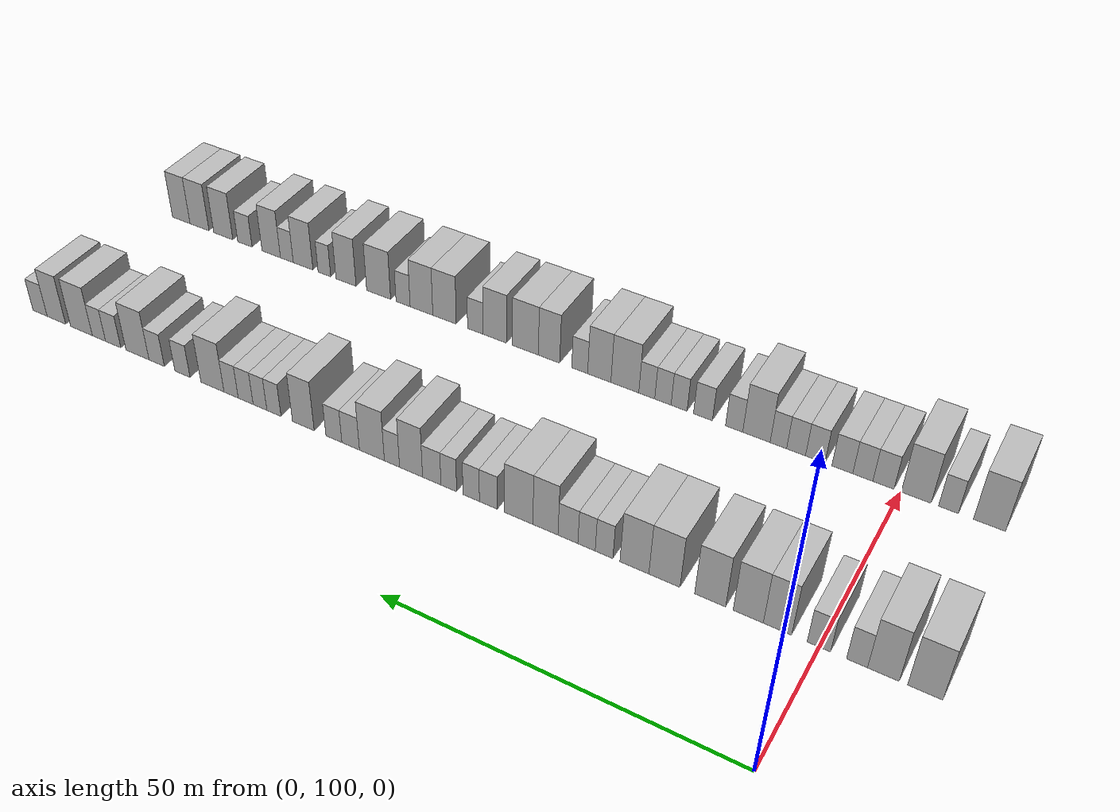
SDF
<sdf version="1.6">
 <world name="default">
  <model name="building_124">
   <static>1</static>
   <pose>25.0000 86.9409 0 0.000000 0.000000 0.000000</pose>
   <link name="link">
    <pose>0 0 4.50 0 0 0</pose>
    <collision name="collision"><geometry><box><size>10.0000 4.2469 9.0000</size></box></geometry></collision>
    <visual name="visual">
     <cast_shadows>0</cast_shadows>
     <geometry><box><size>10.0000 4.2469 9.0000</size></box></geometry>
     <material>
      <script>
       <uri>model://HANNAS_wall/materials/scripts</uri>
       <uri>model://HANNAS_wall/materials/textures</uri>
       <name>vrc/HANNAS_wall</name>
      </script>
     </material>
    </visual>
   </link>
  </model>
  <model name="building_125">
   <static>1</static>
   <pose>25.0000 92.0173 0 0.000000 0.000000 0.000000</pose>
   <link name="link">
    <pose>0 0 4.50 0 0 0</pose>
    <collision name="collision"><geometry><box><size>10.0000 3.9060 9.0000</size></box></geometry></collision>
    <visual name="visual">
     <cast_shadows>0</cast_shadows>
     <geometry><box><size>10.0000 3.9060 9.0000</size></box></geometry>
     <material>
      <script>
       <uri>model://HANNAS_wall/materials/scripts</uri>
       <uri>model://HANNAS_wall/materials/textures</uri>
       <name>vrc/HANNAS_wall</name>
      </script>
     </material>
    </visual>
   </link>
  </model>
  <model name="building_126">
   <static>1</static>
   <pose>25.0000 95.2764 0 0.000000 0.000000 0.000000</pose>
   <link name="link">
    <pose>0 0 3.00 0 0 0</pose>
    <collision name="collision"><geometry><box><size>10.0000 2.6122 6.0000</size></box></geometry></collision>
    <visual name="visual">
     <cast_shadows>0</cast_shadows>
     <geometry><box><size>10.0000 2.6122 6.0000</size></box></geometry>
     <material>
      <script>
       <uri>model://HANNAS_wall/materials/scripts</uri>
       <uri>model://HANNAS_wall/materials/textures</uri>
       <name>vrc/HANNAS_wall</name>
      </script>
     </material>
    </visual>
   </link>
  </model>
  <model name="building_127">
   <static>1</static>
   <pose>25.0000 100.0725 0 0.000000 0.000000 0.000000</pose>
   <link name="link">
    <pose>0 0 3.00 0 0 0</pose>
    <collision name="collision"><geometry><box><size>10.0000 2.9800 6.0000</size></box></geometry></collision>
    <visual name="visual">
     <cast_shadows>0</cast_shadows>
     <geometry><box><size>10.0000 2.9800 6.0000</size></box></geometry>
     <material>
      <script>
       <uri>model://HANNAS_wall/materials/scripts</uri>
       <uri>model://HANNAS_wall/materials/textures</uri>
       <name>vrc/HANNAS_wall</name>
      </script>
     </material>
    </visual>
   </link>
  </model>
  <model name="building_128">
   <static>1</static>
   <pose>25.0000 105.4045 0 0.000000 0.000000 0.000000</pose>
   <link name="link">
    <pose>0 0 4.50 0 0 0</pose>
    <collision name="collision"><geometry><box><size>10.0000 3.6839 9.0000</size></box></geometry></collision>
    <visual name="visual">
     <cast_shadows>0</cast_shadows>
     <geometry><box><size>10.0000 3.6839 9.0000</size></box></geometry>
     <material>
      <script>
       <uri>model://HANNAS_wall/materials/scripts</uri>
       <uri>model://HANNAS_wall/materials/textures</uri>
       <name>vrc/HANNAS_wall</name>
      </script>
     </material>
    </visual>
   </link>
  </model>
  <model name="building_129">
   <static>1</static>
   <pose>25.0000 109.2406 0 0.000000 0.000000 0.000000</pose>
   <link name="link">
    <pose>0 0 4.50 0 0 0</pose>
    <collision name="collision"><geometry><box><size>10.0000 3.9883 9.0000</size></box></geometry></collision>
    <visual name="visual">
     <cast_shadows>0</cast_shadows>
     <geometry><box><size>10.0000 3.9883 9.0000</size></box></geometry>
     <material>
      <script>
       <uri>model://HANNAS_wall/materials/scripts</uri>
       <uri>model://HANNAS_wall/materials/textures</uri>
       <name>vrc/HANNAS_wall</name>
      </script>
     </material>
    </visual>
   </link>
  </model>
  <model name="building_130">
   <static>1</static>
   <pose>25.0000 114.3292 0 0.000000 0.000000 0.000000</pose>
   <link name="link">
    <pose>0 0 4.50 0 0 0</pose>
    <collision name="collision"><geometry><box><size>10.0000 4.1889 9.0000</size></box></geometry></collision>
    <visual name="visual">
     <cast_shadows>0</cast_shadows>
     <geometry><box><size>10.0000 4.1889 9.0000</size></box></geometry>
     <material>
      <script>
       <uri>model://HANNAS_wall/materials/scripts</uri>
       <uri>model://HANNAS_wall/materials/textures</uri>
       <name>vrc/HANNAS_wall</name>
      </script>
     </material>
    </visual>
   </link>
  </model>
  <model name="building_131">
   <static>1</static>
   <pose>25.0000 120.5879 0 0.000000 0.000000 0.000000</pose>
   <link name="link">
    <pose>0 0 4.50 0 0 0</pose>
    <collision name="collision"><geometry><box><size>10.0000 4.3285 9.0000</size></box></geometry></collision>
    <visual name="visual">
     <cast_shadows>0</cast_shadows>
     <geometry><box><size>10.0000 4.3285 9.0000</size></box></geometry>
     <material>
      <script>
       <uri>model://HANNAS_wall/materials/scripts</uri>
       <uri>model://HANNAS_wall/materials/textures</uri>
       <name>vrc/HANNAS_wall</name>
      </script>
     </material>
    </visual>
   </link>
  </model>
  <model name="building_132">
   <static>1</static>
   <pose>25.0000 124.7905 0 0.000000 0.000000 0.000000</pose>
   <link name="link">
    <pose>0 0 4.50 0 0 0</pose>
    <collision name="collision"><geometry><box><size>10.0000 4.0767 9.0000</size></box></geometry></collision>
    <visual name="visual">
     <cast_shadows>0</cast_shadows>
     <geometry><box><size>10.0000 4.0767 9.0000</size></box></geometry>
     <material>
      <script>
       <uri>model://HANNAS_wall/materials/scripts</uri>
       <uri>model://HANNAS_wall/materials/textures</uri>
       <name>vrc/HANNAS_wall</name>
      </script>
     </material>
    </visual>
   </link>
  </model>
  <model name="building_133">
   <static>1</static>
   <pose>25.0000 129.1010 0 0.000000 0.000000 0.000000</pose>
   <link name="link">
    <pose>0 0 3.00 0 0 0</pose>
    <collision name="collision"><geometry><box><size>10.0000 2.5442 6.0000</size></box></geometry></collision>
    <visual name="visual">
     <cast_shadows>0</cast_shadows>
     <geometry><box><size>10.0000 2.5442 6.0000</size></box></geometry>
     <material>
      <script>
       <uri>model://HANNAS_wall/materials/scripts</uri>
       <uri>model://HANNAS_wall/materials/textures</uri>
       <name>vrc/HANNAS_wall</name>
      </script>
     </material>
    </visual>
   </link>
  </model>
  <model name="building_134">
   <static>1</static>
   <pose>25.0000 131.6292 0 0.000000 0.000000 0.000000</pose>
   <link name="link">
    <pose>0 0 3.00 0 0 0</pose>
    <collision name="collision"><geometry><box><size>10.0000 2.5123 6.0000</size></box></geometry></collision>
    <visual name="visual">
     <cast_shadows>0</cast_shadows>
     <geometry><box><size>10.0000 2.5123 6.0000</size></box></geometry>
     <material>
      <script>
       <uri>model://HANNAS_wall/materials/scripts</uri>
       <uri>model://HANNAS_wall/materials/textures</uri>
       <name>vrc/HANNAS_wall</name>
      </script>
     </material>
    </visual>
   </link>
  </model>
  <model name="building_135">
   <static>1</static>
   <pose>25.0000 134.3430 0 0.000000 0.000000 0.000000</pose>
   <link name="link">
    <pose>0 0 3.00 0 0 0</pose>
    <collision name="collision"><geometry><box><size>10.0000 2.9154 6.0000</size></box></geometry></collision>
    <visual name="visual">
     <cast_shadows>0</cast_shadows>
     <geometry><box><size>10.0000 2.9154 6.0000</size></box></geometry>
     <material>
      <script>
       <uri>model://HANNAS_wall/materials/scripts</uri>
       <uri>model://HANNAS_wall/materials/textures</uri>
       <name>vrc/HANNAS_wall</name>
      </script>
     </material>
    </visual>
   </link>
  </model>
  <model name="building_136">
   <static>1</static>
   <pose>25.0000 137.6763 0 0.000000 0.000000 0.000000</pose>
   <link name="link">
    <pose>0 0 4.50 0 0 0</pose>
    <collision name="collision"><geometry><box><size>10.0000 3.7512 9.0000</size></box></geometry></collision>
    <visual name="visual">
     <cast_shadows>0</cast_shadows>
     <geometry><box><size>10.0000 3.7512 9.0000</size></box></geometry>
     <material>
      <script>
       <uri>model://HANNAS_wall/materials/scripts</uri>
       <uri>model://HANNAS_wall/materials/textures</uri>
       <name>vrc/HANNAS_wall</name>
      </script>
     </material>
    </visual>
   </link>
  </model>
  <model name="building_137">
   <static>1</static>
   <pose>25.0000 141.7162 0 0.000000 0.000000 0.000000</pose>
   <link name="link">
    <pose>0 0 4.50 0 0 0</pose>
    <collision name="collision"><geometry><box><size>10.0000 4.3286 9.0000</size></box></geometry></collision>
    <visual name="visual">
     <cast_shadows>0</cast_shadows>
     <geometry><box><size>10.0000 4.3286 9.0000</size></box></geometry>
     <material>
      <script>
       <uri>model://HANNAS_wall/materials/scripts</uri>
       <uri>model://HANNAS_wall/materials/textures</uri>
       <name>vrc/HANNAS_wall</name>
      </script>
     </material>
    </visual>
   </link>
  </model>
  <model name="building_138">
   <static>1</static>
   <pose>25.0000 146.2720 0 0.000000 0.000000 0.000000</pose>
   <link name="link">
    <pose>0 0 3.00 0 0 0</pose>
    <collision name="collision"><geometry><box><size>10.0000 2.7831 6.0000</size></box></geometry></collision>
    <visual name="visual">
     <cast_shadows>0</cast_shadows>
     <geometry><box><size>10.0000 2.7831 6.0000</size></box></geometry>
     <material>
      <script>
       <uri>model://HANNAS_wall/materials/scripts</uri>
       <uri>model://HANNAS_wall/materials/textures</uri>
       <name>vrc/HANNAS_wall</name>
      </script>
     </material>
    </visual>
   </link>
  </model>
  <model name="building_139">
   <static>1</static>
   <pose>25.0000 148.9371 0 0.000000 0.000000 0.000000</pose>
   <link name="link">
    <pose>0 0 3.00 0 0 0</pose>
    <collision name="collision"><geometry><box><size>10.0000 2.5471 6.0000</size></box></geometry></collision>
    <visual name="visual">
     <cast_shadows>0</cast_shadows>
     <geometry><box><size>10.0000 2.5471 6.0000</size></box></geometry>
     <material>
      <script>
       <uri>model://HANNAS_wall/materials/scripts</uri>
       <uri>model://HANNAS_wall/materials/textures</uri>
       <name>vrc/HANNAS_wall</name>
      </script>
     </material>
    </visual>
   </link>
  </model>
  <model name="building_140">
   <static>1</static>
   <pose>25.0000 152.4462 0 0.000000 0.000000 0.000000</pose>
   <link name="link">
    <pose>0 0 3.00 0 0 0</pose>
    <collision name="collision"><geometry><box><size>10.0000 2.4710 6.0000</size></box></geometry></collision>
    <visual name="visual">
     <cast_shadows>0</cast_shadows>
     <geometry><box><size>10.0000 2.4710 6.0000</size></box></geometry>
     <material>
      <script>
       <uri>model://HANNAS_wall/materials/scripts</uri>
       <uri>model://HANNAS_wall/materials/textures</uri>
       <name>vrc/HANNAS_wall</name>
      </script>
     </material>
    </visual>
   </link>
  </model>
  <model name="building_141">
   <static>1</static>
   <pose>25.0000 155.1417 0 0.000000 0.000000 0.000000</pose>
   <link name="link">
    <pose>0 0 3.00 0 0 0</pose>
    <collision name="collision"><geometry><box><size>10.0000 2.9201 6.0000</size></box></geometry></collision>
    <visual name="visual">
     <cast_shadows>0</cast_shadows>
     <geometry><box><size>10.0000 2.9201 6.0000</size></box></geometry>
     <material>
      <script>
       <uri>model://HANNAS_wall/materials/scripts</uri>
       <uri>model://HANNAS_wall/materials/textures</uri>
       <name>vrc/HANNAS_wall</name>
      </script>
     </material>
    </visual>
   </link>
  </model>
  <model name="building_142">
   <static>1</static>
   <pose>25.0000 158.4589 0 0.000000 0.000000 0.000000</pose>
   <link name="link">
    <pose>0 0 4.50 0 0 0</pose>
    <collision name="collision"><geometry><box><size>10.0000 3.7144 9.0000</size></box></geometry></collision>
    <visual name="visual">
     <cast_shadows>0</cast_shadows>
     <geometry><box><size>10.0000 3.7144 9.0000</size></box></geometry>
     <material>
      <script>
       <uri>model://HANNAS_wall/materials/scripts</uri>
       <uri>model://HANNAS_wall/materials/textures</uri>
       <name>vrc/HANNAS_wall</name>
      </script>
     </material>
    </visual>
   </link>
  </model>
  <model name="building_143">
   <static>1</static>
   <pose>25.0000 161.5515 0 0.000000 0.000000 0.000000</pose>
   <link name="link">
    <pose>0 0 3.00 0 0 0</pose>
    <collision name="collision"><geometry><box><size>10.0000 2.4708 6.0000</size></box></geometry></collision>
    <visual name="visual">
     <cast_shadows>0</cast_shadows>
     <geometry><box><size>10.0000 2.4708 6.0000</size></box></geometry>
     <material>
      <script>
       <uri>model://HANNAS_wall/materials/scripts</uri>
       <uri>model://HANNAS_wall/materials/textures</uri>
       <name>vrc/HANNAS_wall</name>
      </script>
     </material>
    </visual>
   </link>
  </model>
  <model name="building_144">
   <static>1</static>
   <pose>25.0000 164.8458 0 0.000000 0.000000 0.000000</pose>
   <link name="link">
    <pose>0 0 4.50 0 0 0</pose>
    <collision name="collision"><geometry><box><size>10.0000 4.1177 9.0000</size></box></geometry></collision>
    <visual name="visual">
     <cast_shadows>0</cast_shadows>
     <geometry><box><size>10.0000 4.1177 9.0000</size></box></geometry>
     <material>
      <script>
       <uri>model://HANNAS_wall/materials/scripts</uri>
       <uri>model://HANNAS_wall/materials/textures</uri>
       <name>vrc/HANNAS_wall</name>
      </script>
     </material>
    </visual>
   </link>
  </model>
  <model name="building_145">
   <static>1</static>
   <pose>25.0000 168.3712 0 0.000000 0.000000 0.000000</pose>
   <link name="link">
    <pose>0 0 3.00 0 0 0</pose>
    <collision name="collision"><geometry><box><size>10.0000 2.9330 6.0000</size></box></geometry></collision>
    <visual name="visual">
     <cast_shadows>0</cast_shadows>
     <geometry><box><size>10.0000 2.9330 6.0000</size></box></geometry>
     <material>
      <script>
       <uri>model://HANNAS_wall/materials/scripts</uri>
       <uri>model://HANNAS_wall/materials/textures</uri>
       <name>vrc/HANNAS_wall</name>
      </script>
     </material>
    </visual>
   </link>
  </model>
  <model name="building_146">
   <static>1</static>
   <pose>25.0000 171.1891 0 0.000000 0.000000 0.000000</pose>
   <link name="link">
    <pose>0 0 3.00 0 0 0</pose>
    <collision name="collision"><geometry><box><size>10.0000 2.7029 6.0000</size></box></geometry></collision>
    <visual name="visual">
     <cast_shadows>0</cast_shadows>
     <geometry><box><size>10.0000 2.7029 6.0000</size></box></geometry>
     <material>
      <script>
       <uri>model://HANNAS_wall/materials/scripts</uri>
       <uri>model://HANNAS_wall/materials/textures</uri>
       <name>vrc/HANNAS_wall</name>
      </script>
     </material>
    </visual>
   </link>
  </model>
  <model name="building_147">
   <static>1</static>
   <pose>25.0000 176.4141 0 0.000000 0.000000 0.000000</pose>
   <link name="link">
    <pose>0 0 4.50 0 0 0</pose>
    <collision name="collision"><geometry><box><size>10.0000 3.7472 9.0000</size></box></geometry></collision>
    <visual name="visual">
     <cast_shadows>0</cast_shadows>
     <geometry><box><size>10.0000 3.7472 9.0000</size></box></geometry>
     <material>
      <script>
       <uri>model://HANNAS_wall/materials/scripts</uri>
       <uri>model://HANNAS_wall/materials/textures</uri>
       <name>vrc/HANNAS_wall</name>
      </script>
     </material>
    </visual>
   </link>
  </model>
  <model name="building_148">
   <static>1</static>
   <pose>25.0000 181.5297 0 0.000000 0.000000 0.000000</pose>
   <link name="link">
    <pose>0 0 3.00 0 0 0</pose>
    <collision name="collision"><geometry><box><size>10.0000 2.4840 6.0000</size></box></geometry></collision>
    <visual name="visual">
     <cast_shadows>0</cast_shadows>
     <geometry><box><size>10.0000 2.4840 6.0000</size></box></geometry>
     <material>
      <script>
       <uri>model://HANNAS_wall/materials/scripts</uri>
       <uri>model://HANNAS_wall/materials/textures</uri>
       <name>vrc/HANNAS_wall</name>
      </script>
     </material>
    </visual>
   </link>
  </model>
  <model name="building_149">
   <static>1</static>
   <pose>25.0000 183.9895 0 0.000000 0.000000 0.000000</pose>
   <link name="link">
    <pose>0 0 3.00 0 0 0</pose>
    <collision name="collision"><geometry><box><size>10.0000 2.4355 6.0000</size></box></geometry></collision>
    <visual name="visual">
     <cast_shadows>0</cast_shadows>
     <geometry><box><size>10.0000 2.4355 6.0000</size></box></geometry>
     <material>
      <script>
       <uri>model://HANNAS_wall/materials/scripts</uri>
       <uri>model://HANNAS_wall/materials/textures</uri>
       <name>vrc/HANNAS_wall</name>
      </script>
     </material>
    </visual>
   </link>
  </model>
  <model name="building_150">
   <static>1</static>
   <pose>25.0000 186.5406 0 0.000000 0.000000 0.000000</pose>
   <link name="link">
    <pose>0 0 3.00 0 0 0</pose>
    <collision name="collision"><geometry><box><size>10.0000 2.6667 6.0000</size></box></geometry></collision>
    <visual name="visual">
     <cast_shadows>0</cast_shadows>
     <geometry><box><size>10.0000 2.6667 6.0000</size></box></geometry>
     <material>
      <script>
       <uri>model://HANNAS_wall/materials/scripts</uri>
       <uri>model://HANNAS_wall/materials/textures</uri>
       <name>vrc/HANNAS_wall</name>
      </script>
     </material>
    </visual>
   </link>
  </model>
  <model name="building_151">
   <static>1</static>
   <pose>25.0000 189.1612 0 0.000000 0.000000 0.000000</pose>
   <link name="link">
    <pose>0 0 3.00 0 0 0</pose>
    <collision name="collision"><geometry><box><size>10.0000 2.5745 6.0000</size></box></geometry></collision>
    <visual name="visual">
     <cast_shadows>0</cast_shadows>
     <geometry><box><size>10.0000 2.5745 6.0000</size></box></geometry>
     <material>
      <script>
       <uri>model://HANNAS_wall/materials/scripts</uri>
       <uri>model://HANNAS_wall/materials/textures</uri>
       <name>vrc/HANNAS_wall</name>
      </script>
     </material>
    </visual>
   </link>
  </model>
  <model name="building_152">
   <static>1</static>
   <pose>25.0000 192.5682 0 0.000000 0.000000 0.000000</pose>
   <link name="link">
    <pose>0 0 4.50 0 0 0</pose>
    <collision name="collision"><geometry><box><size>10.0000 4.2395 9.0000</size></box></geometry></collision>
    <visual name="visual">
     <cast_shadows>0</cast_shadows>
     <geometry><box><size>10.0000 4.2395 9.0000</size></box></geometry>
     <material>
      <script>
       <uri>model://HANNAS_wall/materials/scripts</uri>
       <uri>model://HANNAS_wall/materials/textures</uri>
       <name>vrc/HANNAS_wall</name>
      </script>
     </material>
    </visual>
   </link>
  </model>
  <model name="building_153">
   <static>1</static>
   <pose>25.0000 198.0959 0 0.000000 0.000000 0.000000</pose>
   <link name="link">
    <pose>0 0 3.00 0 0 0</pose>
    <collision name="collision"><geometry><box><size>10.0000 2.8158 6.0000</size></box></geometry></collision>
    <visual name="visual">
     <cast_shadows>0</cast_shadows>
     <geometry><box><size>10.0000 2.8158 6.0000</size></box></geometry>
     <material>
      <script>
       <uri>model://HANNAS_wall/materials/scripts</uri>
       <uri>model://HANNAS_wall/materials/textures</uri>
       <name>vrc/HANNAS_wall</name>
      </script>
     </material>
    </visual>
   </link>
  </model>
  <model name="building_154">
   <static>1</static>
   <pose>25.0000 202.9562 0 0.000000 0.000000 0.000000</pose>
   <link name="link">
    <pose>0 0 3.00 0 0 0</pose>
    <collision name="collision"><geometry><box><size>10.0000 2.9048 6.0000</size></box></geometry></collision>
    <visual name="visual">
     <cast_shadows>0</cast_shadows>
     <geometry><box><size>10.0000 2.9048 6.0000</size></box></geometry>
     <material>
      <script>
       <uri>model://HANNAS_wall/materials/scripts</uri>
       <uri>model://HANNAS_wall/materials/textures</uri>
       <name>vrc/HANNAS_wall</name>
      </script>
     </material>
    </visual>
   </link>
  </model>
  <model name="building_155">
   <static>1</static>
   <pose>25.0000 206.6301 0 0.000000 0.000000 0.000000</pose>
   <link name="link">
    <pose>0 0 4.50 0 0 0</pose>
    <collision name="collision"><geometry><box><size>10.0000 4.4431 9.0000</size></box></geometry></collision>
    <visual name="visual">
     <cast_shadows>0</cast_shadows>
     <geometry><box><size>10.0000 4.4431 9.0000</size></box></geometry>
     <material>
      <script>
       <uri>model://HANNAS_wall/materials/scripts</uri>
       <uri>model://HANNAS_wall/materials/textures</uri>
       <name>vrc/HANNAS_wall</name>
      </script>
     </material>
    </visual>
   </link>
  </model>
  <model name="building_156">
   <static>1</static>
   <pose>25.0000 211.3444 0 0.000000 0.000000 0.000000</pose>
   <link name="link">
    <pose>0 0 3.00 0 0 0</pose>
    <collision name="collision"><geometry><box><size>10.0000 2.9855 6.0000</size></box></geometry></collision>
    <visual name="visual">
     <cast_shadows>0</cast_shadows>
     <geometry><box><size>10.0000 2.9855 6.0000</size></box></geometry>
     <material>
      <script>
       <uri>model://HANNAS_wall/materials/scripts</uri>
       <uri>model://HANNAS_wall/materials/textures</uri>
       <name>vrc/HANNAS_wall</name>
      </script>
     </material>
    </visual>
   </link>
  </model>
  <model name="building_157">
   <static>1</static>
   <pose>25.0000 214.1447 0 0.000000 0.000000 0.000000</pose>
   <link name="link">
    <pose>0 0 3.00 0 0 0</pose>
    <collision name="collision"><geometry><box><size>10.0000 2.6151 6.0000</size></box></geometry></collision>
    <visual name="visual">
     <cast_shadows>0</cast_shadows>
     <geometry><box><size>10.0000 2.6151 6.0000</size></box></geometry>
     <material>
      <script>
       <uri>model://HANNAS_wall/materials/scripts</uri>
       <uri>model://HANNAS_wall/materials/textures</uri>
       <name>vrc/HANNAS_wall</name>
      </script>
     </material>
    </visual>
   </link>
  </model>
  <model name="building_158">
   <static>1</static>
   <pose>25.0000 217.6254 0 0.000000 0.000000 0.000000</pose>
   <link name="link">
    <pose>0 0 4.50 0 0 0</pose>
    <collision name="collision"><geometry><box><size>10.0000 4.3462 9.0000</size></box></geometry></collision>
    <visual name="visual">
     <cast_shadows>0</cast_shadows>
     <geometry><box><size>10.0000 4.3462 9.0000</size></box></geometry>
     <material>
      <script>
       <uri>model://HANNAS_wall/materials/scripts</uri>
       <uri>model://HANNAS_wall/materials/textures</uri>
       <name>vrc/HANNAS_wall</name>
      </script>
     </material>
    </visual>
   </link>
  </model>
  <model name="building_159">
   <static>1</static>
   <pose>25.0000 222.6767 0 0.000000 0.000000 0.000000</pose>
   <link name="link">
    <pose>0 0 4.50 0 0 0</pose>
    <collision name="collision"><geometry><box><size>10.0000 3.7565 9.0000</size></box></geometry></collision>
    <visual name="visual">
     <cast_shadows>0</cast_shadows>
     <geometry><box><size>10.0000 3.7565 9.0000</size></box></geometry>
     <material>
      <script>
       <uri>model://HANNAS_wall/materials/scripts</uri>
       <uri>model://HANNAS_wall/materials/textures</uri>
       <name>vrc/HANNAS_wall</name>
      </script>
     </material>
    </visual>
   </link>
  </model>
  <model name="building_160">
   <static>1</static>
   <pose>25.0000 226.0055 0 0.000000 0.000000 0.000000</pose>
   <link name="link">
    <pose>0 0 3.00 0 0 0</pose>
    <collision name="collision"><geometry><box><size>10.0000 2.9012 6.0000</size></box></geometry></collision>
    <visual name="visual">
     <cast_shadows>0</cast_shadows>
     <geometry><box><size>10.0000 2.9012 6.0000</size></box></geometry>
     <material>
      <script>
       <uri>model://HANNAS_wall/materials/scripts</uri>
       <uri>model://HANNAS_wall/materials/textures</uri>
       <name>vrc/HANNAS_wall</name>
      </script>
     </material>
    </visual>
   </link>
  </model>
  <model name="building_359">
   <static>1</static>
   <pose>55.0000 88.0770 0 0.000000 0.000000 0.000000</pose>
   <link name="link">
    <pose>0 0 4.50 0 0 0</pose>
    <collision name="collision"><geometry><box><size>10.0000 4.2356 9.0000</size></box></geometry></collision>
    <visual name="visual">
     <cast_shadows>0</cast_shadows>
     <geometry><box><size>10.0000 4.2356 9.0000</size></box></geometry>
     <material>
      <script>
       <uri>model://HANNAS_wall/materials/scripts</uri>
       <uri>model://HANNAS_wall/materials/textures</uri>
       <name>vrc/HANNAS_wall</name>
      </script>
     </material>
    </visual>
   </link>
  </model>
  <model name="building_360">
   <static>1</static>
   <pose>55.0000 93.5333 0 0.000000 0.000000 0.000000</pose>
   <link name="link">
    <pose>0 0 3.00 0 0 0</pose>
    <collision name="collision"><geometry><box><size>10.0000 2.6772 6.0000</size></box></geometry></collision>
    <visual name="visual">
     <cast_shadows>0</cast_shadows>
     <geometry><box><size>10.0000 2.6772 6.0000</size></box></geometry>
     <material>
      <script>
       <uri>model://HANNAS_wall/materials/scripts</uri>
       <uri>model://HANNAS_wall/materials/textures</uri>
       <name>vrc/HANNAS_wall</name>
      </script>
     </material>
    </visual>
   </link>
  </model>
  <model name="building_361">
   <static>1</static>
   <pose>55.0000 97.9180 0 0.000000 0.000000 0.000000</pose>
   <link name="link">
    <pose>0 0 4.50 0 0 0</pose>
    <collision name="collision"><geometry><box><size>10.0000 4.0922 9.0000</size></box></geometry></collision>
    <visual name="visual">
     <cast_shadows>0</cast_shadows>
     <geometry><box><size>10.0000 4.0922 9.0000</size></box></geometry>
     <material>
      <script>
       <uri>model://HANNAS_wall/materials/scripts</uri>
       <uri>model://HANNAS_wall/materials/textures</uri>
       <name>vrc/HANNAS_wall</name>
      </script>
     </material>
    </visual>
   </link>
  </model>
  <model name="building_362">
   <static>1</static>
   <pose>55.0000 102.4336 0 0.000000 0.000000 0.000000</pose>
   <link name="link">
    <pose>0 0 3.00 0 0 0</pose>
    <collision name="collision"><geometry><box><size>10.0000 2.9390 6.0000</size></box></geometry></collision>
    <visual name="visual">
     <cast_shadows>0</cast_shadows>
     <geometry><box><size>10.0000 2.9390 6.0000</size></box></geometry>
     <material>
      <script>
       <uri>model://HANNAS_wall/materials/scripts</uri>
       <uri>model://HANNAS_wall/materials/textures</uri>
       <name>vrc/HANNAS_wall</name>
      </script>
     </material>
    </visual>
   </link>
  </model>
  <model name="building_363">
   <static>1</static>
   <pose>55.0000 105.3279 0 0.000000 0.000000 0.000000</pose>
   <link name="link">
    <pose>0 0 3.00 0 0 0</pose>
    <collision name="collision"><geometry><box><size>10.0000 2.8496 6.0000</size></box></geometry></collision>
    <visual name="visual">
     <cast_shadows>0</cast_shadows>
     <geometry><box><size>10.0000 2.8496 6.0000</size></box></geometry>
     <material>
      <script>
       <uri>model://HANNAS_wall/materials/scripts</uri>
       <uri>model://HANNAS_wall/materials/textures</uri>
       <name>vrc/HANNAS_wall</name>
      </script>
     </material>
    </visual>
   </link>
  </model>
  <model name="building_364">
   <static>1</static>
   <pose>55.0000 108.2409 0 0.000000 0.000000 0.000000</pose>
   <link name="link">
    <pose>0 0 3.00 0 0 0</pose>
    <collision name="collision"><geometry><box><size>10.0000 2.9765 6.0000</size></box></geometry></collision>
    <visual name="visual">
     <cast_shadows>0</cast_shadows>
     <geometry><box><size>10.0000 2.9765 6.0000</size></box></geometry>
     <material>
      <script>
       <uri>model://HANNAS_wall/materials/scripts</uri>
       <uri>model://HANNAS_wall/materials/textures</uri>
       <name>vrc/HANNAS_wall</name>
      </script>
     </material>
    </visual>
   </link>
  </model>
  <model name="building_365">
   <static>1</static>
   <pose>55.0000 112.1297 0 0.000000 0.000000 0.000000</pose>
   <link name="link">
    <pose>0 0 3.00 0 0 0</pose>
    <collision name="collision"><geometry><box><size>10.0000 2.8011 6.0000</size></box></geometry></collision>
    <visual name="visual">
     <cast_shadows>0</cast_shadows>
     <geometry><box><size>10.0000 2.8011 6.0000</size></box></geometry>
     <material>
      <script>
       <uri>model://HANNAS_wall/materials/scripts</uri>
       <uri>model://HANNAS_wall/materials/textures</uri>
       <name>vrc/HANNAS_wall</name>
      </script>
     </material>
    </visual>
   </link>
  </model>
  <model name="building_366">
   <static>1</static>
   <pose>55.0000 114.9094 0 0.000000 0.000000 0.000000</pose>
   <link name="link">
    <pose>0 0 3.00 0 0 0</pose>
    <collision name="collision"><geometry><box><size>10.0000 2.7583 6.0000</size></box></geometry></collision>
    <visual name="visual">
     <cast_shadows>0</cast_shadows>
     <geometry><box><size>10.0000 2.7583 6.0000</size></box></geometry>
     <material>
      <script>
       <uri>model://HANNAS_wall/materials/scripts</uri>
       <uri>model://HANNAS_wall/materials/textures</uri>
       <name>vrc/HANNAS_wall</name>
      </script>
     </material>
    </visual>
   </link>
  </model>
  <model name="building_367">
   <static>1</static>
   <pose>55.0000 117.5058 0 0.000000 0.000000 0.000000</pose>
   <link name="link">
    <pose>0 0 3.00 0 0 0</pose>
    <collision name="collision"><geometry><box><size>10.0000 2.4347 6.0000</size></box></geometry></collision>
    <visual name="visual">
     <cast_shadows>0</cast_shadows>
     <geometry><box><size>10.0000 2.4347 6.0000</size></box></geometry>
     <material>
      <script>
       <uri>model://HANNAS_wall/materials/scripts</uri>
       <uri>model://HANNAS_wall/materials/textures</uri>
       <name>vrc/HANNAS_wall</name>
      </script>
     </material>
    </visual>
   </link>
  </model>
  <model name="building_368">
   <static>1</static>
   <pose>55.0000 120.7725 0 0.000000 0.000000 0.000000</pose>
   <link name="link">
    <pose>0 0 4.50 0 0 0</pose>
    <collision name="collision"><geometry><box><size>10.0000 4.0986 9.0000</size></box></geometry></collision>
    <visual name="visual">
     <cast_shadows>0</cast_shadows>
     <geometry><box><size>10.0000 4.0986 9.0000</size></box></geometry>
     <material>
      <script>
       <uri>model://HANNAS_wall/materials/scripts</uri>
       <uri>model://HANNAS_wall/materials/textures</uri>
       <name>vrc/HANNAS_wall</name>
      </script>
     </material>
    </visual>
   </link>
  </model>
  <model name="building_369">
   <static>1</static>
   <pose>55.0000 124.1245 0 0.000000 0.000000 0.000000</pose>
   <link name="link">
    <pose>0 0 3.00 0 0 0</pose>
    <collision name="collision"><geometry><box><size>10.0000 2.6054 6.0000</size></box></geometry></collision>
    <visual name="visual">
     <cast_shadows>0</cast_shadows>
     <geometry><box><size>10.0000 2.6054 6.0000</size></box></geometry>
     <material>
      <script>
       <uri>model://HANNAS_wall/materials/scripts</uri>
       <uri>model://HANNAS_wall/materials/textures</uri>
       <name>vrc/HANNAS_wall</name>
      </script>
     </material>
    </visual>
   </link>
  </model>
  <model name="building_370">
   <static>1</static>
   <pose>55.0000 128.8809 0 0.000000 0.000000 0.000000</pose>
   <link name="link">
    <pose>0 0 3.00 0 0 0</pose>
    <collision name="collision"><geometry><box><size>10.0000 2.9073 6.0000</size></box></geometry></collision>
    <visual name="visual">
     <cast_shadows>0</cast_shadows>
     <geometry><box><size>10.0000 2.9073 6.0000</size></box></geometry>
     <material>
      <script>
       <uri>model://HANNAS_wall/materials/scripts</uri>
       <uri>model://HANNAS_wall/materials/textures</uri>
       <name>vrc/HANNAS_wall</name>
      </script>
     </material>
    </visual>
   </link>
  </model>
  <model name="building_371">
   <static>1</static>
   <pose>55.0000 132.5844 0 0.000000 0.000000 0.000000</pose>
   <link name="link">
    <pose>0 0 3.00 0 0 0</pose>
    <collision name="collision"><geometry><box><size>10.0000 2.4999 6.0000</size></box></geometry></collision>
    <visual name="visual">
     <cast_shadows>0</cast_shadows>
     <geometry><box><size>10.0000 2.4999 6.0000</size></box></geometry>
     <material>
      <script>
       <uri>model://HANNAS_wall/materials/scripts</uri>
       <uri>model://HANNAS_wall/materials/textures</uri>
       <name>vrc/HANNAS_wall</name>
      </script>
     </material>
    </visual>
   </link>
  </model>
  <model name="building_372">
   <static>1</static>
   <pose>55.0000 135.1158 0 0.000000 0.000000 0.000000</pose>
   <link name="link">
    <pose>0 0 3.00 0 0 0</pose>
    <collision name="collision"><geometry><box><size>10.0000 2.5628 6.0000</size></box></geometry></collision>
    <visual name="visual">
     <cast_shadows>0</cast_shadows>
     <geometry><box><size>10.0000 2.5628 6.0000</size></box></geometry>
     <material>
      <script>
       <uri>model://HANNAS_wall/materials/scripts</uri>
       <uri>model://HANNAS_wall/materials/textures</uri>
       <name>vrc/HANNAS_wall</name>
      </script>
     </material>
    </visual>
   </link>
  </model>
  <model name="building_373">
   <static>1</static>
   <pose>55.0000 137.6689 0 0.000000 0.000000 0.000000</pose>
   <link name="link">
    <pose>0 0 3.00 0 0 0</pose>
    <collision name="collision"><geometry><box><size>10.0000 2.5434 6.0000</size></box></geometry></collision>
    <visual name="visual">
     <cast_shadows>0</cast_shadows>
     <geometry><box><size>10.0000 2.5434 6.0000</size></box></geometry>
     <material>
      <script>
       <uri>model://HANNAS_wall/materials/scripts</uri>
       <uri>model://HANNAS_wall/materials/textures</uri>
       <name>vrc/HANNAS_wall</name>
      </script>
     </material>
    </visual>
   </link>
  </model>
  <model name="building_374">
   <static>1</static>
   <pose>55.0000 141.1893 0 0.000000 0.000000 0.000000</pose>
   <link name="link">
    <pose>0 0 4.50 0 0 0</pose>
    <collision name="collision"><geometry><box><size>10.0000 4.4974 9.0000</size></box></geometry></collision>
    <visual name="visual">
     <cast_shadows>0</cast_shadows>
     <geometry><box><size>10.0000 4.4974 9.0000</size></box></geometry>
     <material>
      <script>
       <uri>model://HANNAS_wall/materials/scripts</uri>
       <uri>model://HANNAS_wall/materials/textures</uri>
       <name>vrc/HANNAS_wall</name>
      </script>
     </material>
    </visual>
   </link>
  </model>
  <model name="building_375">
   <static>1</static>
   <pose>55.0000 145.3423 0 0.000000 0.000000 0.000000</pose>
   <link name="link">
    <pose>0 0 4.50 0 0 0</pose>
    <collision name="collision"><geometry><box><size>10.0000 3.8087 9.0000</size></box></geometry></collision>
    <visual name="visual">
     <cast_shadows>0</cast_shadows>
     <geometry><box><size>10.0000 3.8087 9.0000</size></box></geometry>
     <material>
      <script>
       <uri>model://HANNAS_wall/materials/scripts</uri>
       <uri>model://HANNAS_wall/materials/textures</uri>
       <name>vrc/HANNAS_wall</name>
      </script>
     </material>
    </visual>
   </link>
  </model>
  <model name="building_376">
   <static>1</static>
   <pose>55.0000 148.5592 0 0.000000 0.000000 0.000000</pose>
   <link name="link">
    <pose>0 0 3.00 0 0 0</pose>
    <collision name="collision"><geometry><box><size>10.0000 2.6253 6.0000</size></box></geometry></collision>
    <visual name="visual">
     <cast_shadows>0</cast_shadows>
     <geometry><box><size>10.0000 2.6253 6.0000</size></box></geometry>
     <material>
      <script>
       <uri>model://HANNAS_wall/materials/scripts</uri>
       <uri>model://HANNAS_wall/materials/textures</uri>
       <name>vrc/HANNAS_wall</name>
      </script>
     </material>
    </visual>
   </link>
  </model>
  <model name="building_377">
   <static>1</static>
   <pose>55.0000 153.6795 0 0.000000 0.000000 0.000000</pose>
   <link name="link">
    <pose>0 0 4.50 0 0 0</pose>
    <collision name="collision"><geometry><box><size>10.0000 3.6152 9.0000</size></box></geometry></collision>
    <visual name="visual">
     <cast_shadows>0</cast_shadows>
     <geometry><box><size>10.0000 3.6152 9.0000</size></box></geometry>
     <material>
      <script>
       <uri>model://HANNAS_wall/materials/scripts</uri>
       <uri>model://HANNAS_wall/materials/textures</uri>
       <name>vrc/HANNAS_wall</name>
      </script>
     </material>
    </visual>
   </link>
  </model>
  <model name="building_378">
   <static>1</static>
   <pose>55.0000 157.7050 0 0.000000 0.000000 0.000000</pose>
   <link name="link">
    <pose>0 0 4.50 0 0 0</pose>
    <collision name="collision"><geometry><box><size>10.0000 4.4358 9.0000</size></box></geometry></collision>
    <visual name="visual">
     <cast_shadows>0</cast_shadows>
     <geometry><box><size>10.0000 4.4358 9.0000</size></box></geometry>
     <material>
      <script>
       <uri>model://HANNAS_wall/materials/scripts</uri>
       <uri>model://HANNAS_wall/materials/textures</uri>
       <name>vrc/HANNAS_wall</name>
      </script>
     </material>
    </visual>
   </link>
  </model>
  <model name="building_379">
   <static>1</static>
   <pose>55.0000 162.9648 0 0.000000 0.000000 0.000000</pose>
   <link name="link">
    <pose>0 0 4.50 0 0 0</pose>
    <collision name="collision"><geometry><box><size>10.0000 4.0837 9.0000</size></box></geometry></collision>
    <visual name="visual">
     <cast_shadows>0</cast_shadows>
     <geometry><box><size>10.0000 4.0837 9.0000</size></box></geometry>
     <material>
      <script>
       <uri>model://HANNAS_wall/materials/scripts</uri>
       <uri>model://HANNAS_wall/materials/textures</uri>
       <name>vrc/HANNAS_wall</name>
      </script>
     </material>
    </visual>
   </link>
  </model>
  <model name="building_380">
   <static>1</static>
   <pose>55.0000 166.3618 0 0.000000 0.000000 0.000000</pose>
   <link name="link">
    <pose>0 0 3.00 0 0 0</pose>
    <collision name="collision"><geometry><box><size>10.0000 2.7104 6.0000</size></box></geometry></collision>
    <visual name="visual">
     <cast_shadows>0</cast_shadows>
     <geometry><box><size>10.0000 2.7104 6.0000</size></box></geometry>
     <material>
      <script>
       <uri>model://HANNAS_wall/materials/scripts</uri>
       <uri>model://HANNAS_wall/materials/textures</uri>
       <name>vrc/HANNAS_wall</name>
      </script>
     </material>
    </visual>
   </link>
  </model>
  <model name="building_381">
   <static>1</static>
   <pose>55.0000 171.8228 0 0.000000 0.000000 0.000000</pose>
   <link name="link">
    <pose>0 0 4.50 0 0 0</pose>
    <collision name="collision"><geometry><box><size>10.0000 4.2116 9.0000</size></box></geometry></collision>
    <visual name="visual">
     <cast_shadows>0</cast_shadows>
     <geometry><box><size>10.0000 4.2116 9.0000</size></box></geometry>
     <material>
      <script>
       <uri>model://HANNAS_wall/materials/scripts</uri>
       <uri>model://HANNAS_wall/materials/textures</uri>
       <name>vrc/HANNAS_wall</name>
      </script>
     </material>
    </visual>
   </link>
  </model>
  <model name="building_382">
   <static>1</static>
   <pose>55.0000 175.9862 0 0.000000 0.000000 0.000000</pose>
   <link name="link">
    <pose>0 0 4.50 0 0 0</pose>
    <collision name="collision"><geometry><box><size>10.0000 4.1153 9.0000</size></box></geometry></collision>
    <visual name="visual">
     <cast_shadows>0</cast_shadows>
     <geometry><box><size>10.0000 4.1153 9.0000</size></box></geometry>
     <material>
      <script>
       <uri>model://HANNAS_wall/materials/scripts</uri>
       <uri>model://HANNAS_wall/materials/textures</uri>
       <name>vrc/HANNAS_wall</name>
      </script>
     </material>
    </visual>
   </link>
  </model>
  <model name="building_383">
   <static>1</static>
   <pose>55.0000 179.3423 0 0.000000 0.000000 0.000000</pose>
   <link name="link">
    <pose>0 0 3.00 0 0 0</pose>
    <collision name="collision"><geometry><box><size>10.0000 2.5969 6.0000</size></box></geometry></collision>
    <visual name="visual">
     <cast_shadows>0</cast_shadows>
     <geometry><box><size>10.0000 2.5969 6.0000</size></box></geometry>
     <material>
      <script>
       <uri>model://HANNAS_wall/materials/scripts</uri>
       <uri>model://HANNAS_wall/materials/textures</uri>
       <name>vrc/HANNAS_wall</name>
      </script>
     </material>
    </visual>
   </link>
  </model>
  <model name="building_384">
   <static>1</static>
   <pose>55.0000 183.8821 0 0.000000 0.000000 0.000000</pose>
   <link name="link">
    <pose>0 0 4.50 0 0 0</pose>
    <collision name="collision"><geometry><box><size>10.0000 4.4827 9.0000</size></box></geometry></collision>
    <visual name="visual">
     <cast_shadows>0</cast_shadows>
     <geometry><box><size>10.0000 4.4827 9.0000</size></box></geometry>
     <material>
      <script>
       <uri>model://HANNAS_wall/materials/scripts</uri>
       <uri>model://HANNAS_wall/materials/textures</uri>
       <name>vrc/HANNAS_wall</name>
      </script>
     </material>
    </visual>
   </link>
  </model>
  <model name="building_385">
   <static>1</static>
   <pose>55.0000 190.0354 0 0.000000 0.000000 0.000000</pose>
   <link name="link">
    <pose>0 0 4.50 0 0 0</pose>
    <collision name="collision"><geometry><box><size>10.0000 3.8239 9.0000</size></box></geometry></collision>
    <visual name="visual">
     <cast_shadows>0</cast_shadows>
     <geometry><box><size>10.0000 3.8239 9.0000</size></box></geometry>
     <material>
      <script>
       <uri>model://HANNAS_wall/materials/scripts</uri>
       <uri>model://HANNAS_wall/materials/textures</uri>
       <name>vrc/HANNAS_wall</name>
      </script>
     </material>
    </visual>
   </link>
  </model>
  <model name="building_386">
   <static>1</static>
   <pose>55.0000 194.1712 0 0.000000 0.000000 0.000000</pose>
   <link name="link">
    <pose>0 0 3.00 0 0 0</pose>
    <collision name="collision"><geometry><box><size>10.0000 2.4477 6.0000</size></box></geometry></collision>
    <visual name="visual">
     <cast_shadows>0</cast_shadows>
     <geometry><box><size>10.0000 2.4477 6.0000</size></box></geometry>
     <material>
      <script>
       <uri>model://HANNAS_wall/materials/scripts</uri>
       <uri>model://HANNAS_wall/materials/textures</uri>
       <name>vrc/HANNAS_wall</name>
      </script>
     </material>
    </visual>
   </link>
  </model>
  <model name="building_387">
   <static>1</static>
   <pose>55.0000 198.3220 0 0.000000 0.000000 0.000000</pose>
   <link name="link">
    <pose>0 0 4.50 0 0 0</pose>
    <collision name="collision"><geometry><box><size>10.0000 3.8539 9.0000</size></box></geometry></collision>
    <visual name="visual">
     <cast_shadows>0</cast_shadows>
     <geometry><box><size>10.0000 3.8539 9.0000</size></box></geometry>
     <material>
      <script>
       <uri>model://HANNAS_wall/materials/scripts</uri>
       <uri>model://HANNAS_wall/materials/textures</uri>
       <name>vrc/HANNAS_wall</name>
      </script>
     </material>
    </visual>
   </link>
  </model>
  <model name="building_388">
   <static>1</static>
   <pose>55.0000 201.5134 0 0.000000 0.000000 0.000000</pose>
   <link name="link">
    <pose>0 0 3.00 0 0 0</pose>
    <collision name="collision"><geometry><box><size>10.0000 2.5289 6.0000</size></box></geometry></collision>
    <visual name="visual">
     <cast_shadows>0</cast_shadows>
     <geometry><box><size>10.0000 2.5289 6.0000</size></box></geometry>
     <material>
      <script>
       <uri>model://HANNAS_wall/materials/scripts</uri>
       <uri>model://HANNAS_wall/materials/textures</uri>
       <name>vrc/HANNAS_wall</name>
      </script>
     </material>
    </visual>
   </link>
  </model>
  <model name="building_389">
   <static>1</static>
   <pose>55.0000 204.6260 0 0.000000 0.000000 0.000000</pose>
   <link name="link">
    <pose>0 0 4.50 0 0 0</pose>
    <collision name="collision"><geometry><box><size>10.0000 3.6962 9.0000</size></box></geometry></collision>
    <visual name="visual">
     <cast_shadows>0</cast_shadows>
     <geometry><box><size>10.0000 3.6962 9.0000</size></box></geometry>
     <material>
      <script>
       <uri>model://HANNAS_wall/materials/scripts</uri>
       <uri>model://HANNAS_wall/materials/textures</uri>
       <name>vrc/HANNAS_wall</name>
      </script>
     </material>
    </visual>
   </link>
  </model>
  <model name="building_390">
   <static>1</static>
   <pose>55.0000 209.9328 0 0.000000 0.000000 0.000000</pose>
   <link name="link">
    <pose>0 0 3.00 0 0 0</pose>
    <collision name="collision"><geometry><box><size>10.0000 2.9174 6.0000</size></box></geometry></collision>
    <visual name="visual">
     <cast_shadows>0</cast_shadows>
     <geometry><box><size>10.0000 2.9174 6.0000</size></box></geometry>
     <material>
      <script>
       <uri>model://HANNAS_wall/materials/scripts</uri>
       <uri>model://HANNAS_wall/materials/textures</uri>
       <name>vrc/HANNAS_wall</name>
      </script>
     </material>
    </visual>
   </link>
  </model>
  <model name="building_391">
   <static>1</static>
   <pose>55.0000 214.3644 0 0.000000 0.000000 0.000000</pose>
   <link name="link">
    <pose>0 0 4.50 0 0 0</pose>
    <collision name="collision"><geometry><box><size>10.0000 3.9459 9.0000</size></box></geometry></collision>
    <visual name="visual">
     <cast_shadows>0</cast_shadows>
     <geometry><box><size>10.0000 3.9459 9.0000</size></box></geometry>
     <material>
      <script>
       <uri>model://HANNAS_wall/materials/scripts</uri>
       <uri>model://HANNAS_wall/materials/textures</uri>
       <name>vrc/HANNAS_wall</name>
      </script>
     </material>
    </visual>
   </link>
  </model>
  <model name="building_392">
   <static>1</static>
   <pose>55.0000 219.3227 0 0.000000 0.000000 0.000000</pose>
   <link name="link">
    <pose>0 0 4.50 0 0 0</pose>
    <collision name="collision"><geometry><box><size>10.0000 3.9707 9.0000</size></box></geometry></collision>
    <visual name="visual">
     <cast_shadows>0</cast_shadows>
     <geometry><box><size>10.0000 3.9707 9.0000</size></box></geometry>
     <material>
      <script>
       <uri>model://HANNAS_wall/materials/scripts</uri>
       <uri>model://HANNAS_wall/materials/textures</uri>
       <name>vrc/HANNAS_wall</name>
      </script>
     </material>
    </visual>
   </link>
  </model>
  <model name="building_393">
   <static>1</static>
   <pose>55.0000 223.1584 0 0.000000 0.000000 0.000000</pose>
   <link name="link">
    <pose>0 0 4.50 0 0 0</pose>
    <collision name="collision"><geometry><box><size>10.0000 3.7008 9.0000</size></box></geometry></collision>
    <visual name="visual">
     <cast_shadows>0</cast_shadows>
     <geometry><box><size>10.0000 3.7008 9.0000</size></box></geometry>
     <material>
      <script>
       <uri>model://HANNAS_wall/materials/scripts</uri>
       <uri>model://HANNAS_wall/materials/textures</uri>
       <name>vrc/HANNAS_wall</name>
      </script>
     </material>
    </visual>
   </link>
  </model>
 </world>
</sdf>
